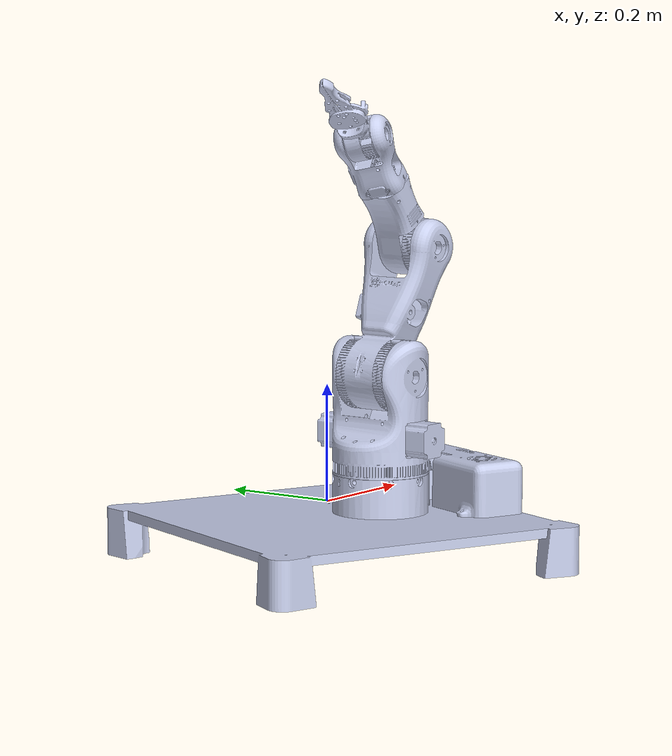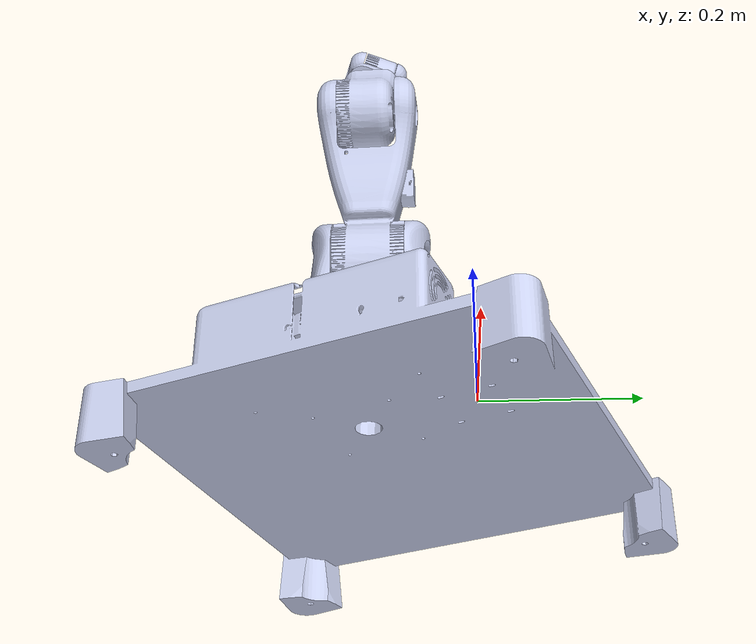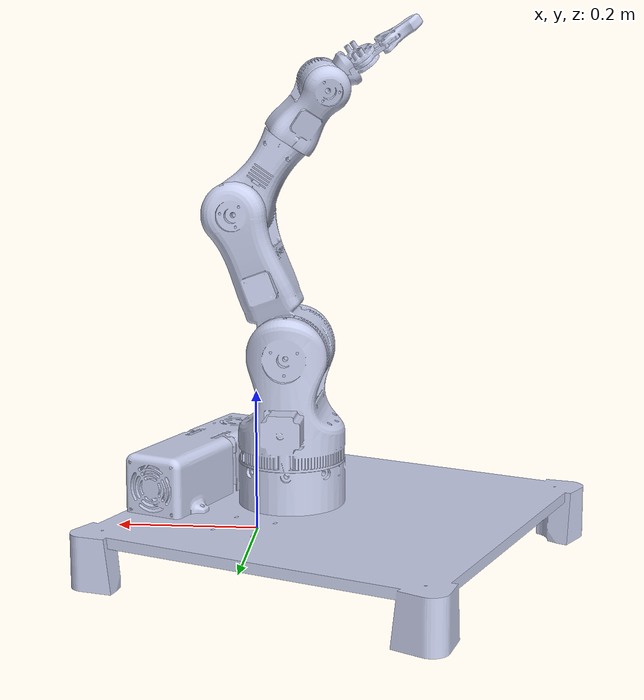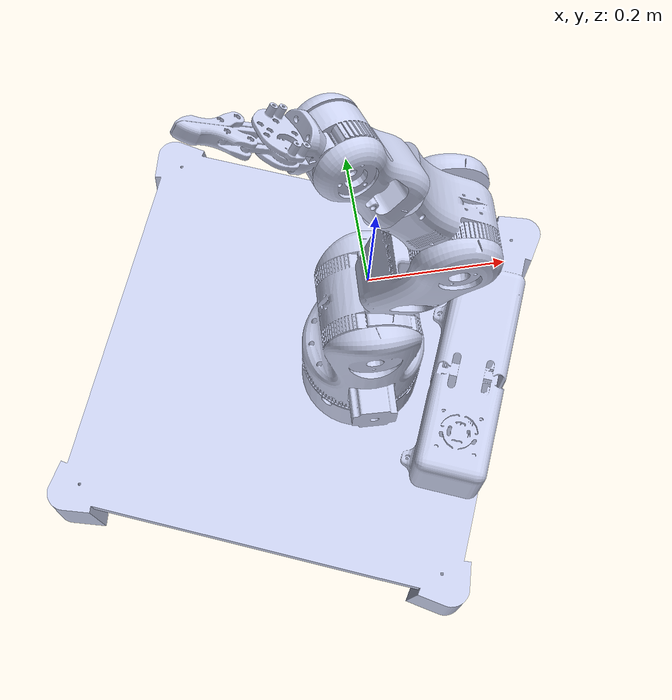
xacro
<?xml version="1.0"?>
<robot xmlns:xacro="http://www.ros.org/wiki/xacro"  name="robot_5a_urdf">

    <link name="world"></link>

    <joint name="base_joint" type="fixed">
      <origine xyz="1.5 1.0 0" rpy="0 0 0"/>
      <parent link="world"/>
      <child link="base_link"/>
    </joint>

    <link name="base_link">
      <inertial>
        <origin xyz="-0.0548860380843249 0.13093941386242 0.123490600745143" rpy="0 0 0"/>
        <mass value="14.597154271183"/>
        <inertia ixx="0.695957973379333" ixy="-0.0649025967272173" ixz="-0.0112244947190923"
                iyy="0.473270434583888" iyz="-0.0216810141749484" izz="0.714879715191763"/>
      </inertial>
      <visual>
        <origin xyz="0 0 0" rpy="0 0 0"/>
        <geometry>
          <mesh filename="file://$(find robot_5a_urdf)/meshes/base_link.STL"/>
        </geometry>
        <material name="">
          <color rgba="0.792156862745098 0.819607843137255 0.933333333333333 1"/>
        </material>
      </visual>
      <collision>
        <origin xyz="0 0 0" rpy="0 0 0"/>
        <geometry>
          <mesh filename="file://$(find robot_5a_urdf)/meshes/base_link.STL"/>
        </geometry>
      </collision>
    </link>

    <link name="Link_1">
      <inertial>
        <origin xyz="-0.021301 0.065037 0.0075714" rpy="0 0 0"/>
        <mass value="14.597"/>
        <inertia ixx="0.69565" ixy="-0.058894" ixz="0.010958" iyy="0.47327" iyz="0.034841" izz="0.71519"/>
      </inertial>
      <visual>
        <origin xyz="0 0 0" rpy="0 0 0"/>
        <geometry>
          <mesh filename="file://$(find robot_5a_urdf)/meshes/Link_1.STL"/>
        </geometry>
        <material name="">
          <color rgba="0.79216 0.81961 0.93333 1"/>
        </material>
      </visual>
      <collision>
        <origin xyz="0 0 0" rpy="0 0 0"/>
        <geometry>
          <mesh filename="file://$(find robot_5a_urdf)/meshes/Link_1.STL"/>
        </geometry>
      </collision>
    </link>

    <joint name="Joint_1" type="revolute">
      <origin xyz="-0.035213 -0.13463 0.065903" rpy="1.5708 0 -0.85661"/>
      <parent link="base_link"/>
      <child link="Link_1"/>
      <axis xyz="0 1 0"/>
      <limit lower="-1.5707" upper="1.5707" effort="5" velocity="1"/>
    </joint>

    <link name="Link_2">
      <inertial>
        <origin xyz="0.0103079949986939 -0.10122359821804 0.0158561314021889" rpy="0 0 0"/>
        <mass value="14.597154271183"/>
        <inertia ixx="0.715780080314829" ixy="0.021388200911921" ixz="0.00320169652070024"
                iyy="0.457122372881164" iyz="0.0219238847969466" izz="0.711205669958993"/>
      </inertial>
      <visual>
        <origin xyz="0 0 0" rpy="0 0 0"/>
        <geometry>
          <mesh filename="file://$(find robot_5a_urdf)/meshes/Link_2.STL"/>
        </geometry>
        <material name="">
          <color rgba="0.792156862745098 0.819607843137255 0.933333333333333 1"/>
        </material>
      </visual>
      <collision>
        <origin xyz="0 0 0" rpy="0 0 0"/>
        <geometry>
          <mesh filename="file://$(find robot_5a_urdf)/meshes/Link_2.STL"/>
        </geometry>
      </collision>
    </link>

    <joint name="Joint_2" type="revolute">
      <origin xyz="0 0.1655 0" rpy="-2.7886 0.7558 3.1416"/>
      <parent link="Link_1"/>
      <child link="Link_2"/>
      <axis xyz="1 0 0"/>
      <limit lower="-1.5707" upper="1.5707" effort="5" velocity="1"/>
    </joint>

    <link name="Link_3">
      <inertial>
        <origin xyz="0.20022943071033 -0.0103079949986938 0.253115452864687" rpy="0 0 0"/>
        <mass value="14.597154271183"/>
        <inertia ixx="0.604661953325442" ixy="0.00982373505240051" ixz="-0.127279503360431"
                iyy="0.715780080314829" iyz="0.0192665572555039" izz="0.563666089514714"/>
      </inertial>
      <visual>
        <origin xyz="0 0 0" rpy="0 0 0"/>
        <geometry>
          <mesh filename="file://$(find robot_5a_urdf)/meshes/Link_3.STL"/>
        </geometry>
        <material name="">
          <color rgba="0.792156862745098 0.819607843137255 0.933333333333333 1"/>
        </material>
      </visual>
      <collision>
        <origin xyz="0 0 0" rpy="0 0 0"/>
        <geometry>
          <mesh filename="file://$(find robot_5a_urdf)/meshes/Link_3.STL"/>
        </geometry>
      </collision>
    </link>

    <joint name="Joint_3" type="revolute">
      <origin xyz="0 0.22112 0" rpy="-3.1416 -0.95068 -1.5708"/>
      <parent link="Link_2"/>
      <child link="Link_3"/>
      <axis xyz="0 1 0"/>
      <limit lower="-1.5707" upper="1.5707" effort="5" velocity="1"/>
    </joint>

    <link name="Link_4">
      <inertial>
        <origin xyz="0.229768913416455 -0.369352839223879 0.106888566945361" rpy="0 0 0"/>
        <mass value="14.597154271183"/>
        <inertia ixx="0.59877838195797" ixy="0.114168459956055" ixz="-0.0669283055033016"
                iyy="0.604661953325442" iyz="0.057115151206315" izz="0.680667787871573"/>
      </inertial>
      <visual>
        <origin xyz="0 0 0" rpy="0 0 0"/>
        <geometry>
          <mesh filename="file://$(find robot_5a_urdf)/meshes/Link_4.STL"/>
        </geometry>
        <material name="">
          <color rgba="0.792156862745098 0.819607843137255 0.933333333333333 1"/>
        </material>
      </visual>
      <collision>
        <origin xyz="0 0 0" rpy="0 0 0"/>
        <geometry>
          <mesh filename="file://$(find robot_5a_urdf)/meshes/Link_4.STL"/>
        </geometry>
      </collision>
    </link>

    <joint name="Joint_4" type="revolute">
      <origin xyz="-0.16912 0.002 0" rpy="0 -1.184 1.5708"/>
      <parent link="Link_3"/>
      <child link="Link_4"/>
      <axis xyz="0 1 0"/>
      <limit lower="-1.5707" upper="1.5707" effort="5" velocity="1"/>
    </joint>

    <link name="Link_5">
      <inertial>
        <origin xyz="0.3705564409974 0.106888566945361 0.30222256926485" rpy="0 0 0"/>
        <mass value="14.597154271183"/>
        <inertia ixx="0.520070664432361" ixy="-0.0834897515196175" ixz="-0.0798526767078822"
                iyy="0.680667787871572" iyz="-0.027766886142599" izz="0.683369670851052"/>
      </inertial>
      <visual>
        <origin xyz="0 0 0" rpy="0 0 0"/>
        <geometry>
          <mesh filename="file://$(find robot_5a_urdf)/meshes/Link_5.STL"/>
        </geometry>
        <material name="">
          <color rgba="0.792156862745098 0.819607843137255 0.933333333333333 1"/>
        </material>
      </visual>
      <collision>
        <origin xyz="0 0 0" rpy="0 0 0"/>
        <geometry>
          <mesh filename="file://$(find robot_5a_urdf)/meshes/Link_5.STL"/>
        </geometry>
      </collision>
    </link>

    <joint name="Joint_5" type="revolute">
      <origin xyz="0 0.05 0" rpy="1.5708 0 -0.38538"/>
      <parent link="Link_4"/>
      <child link="Link_5"/>
      <axis xyz="0 1 0"/>
      <limit lower="-1.5707" upper="1.5707" effort="5" velocity="1"/>
    </joint>

    <!-- Set the gazebo robot controler & plugins-->

    <ros2_control name="GazeboSimSystem" type="system">

      <hardware>
        <plugin>gazebo_ros2_control/GazeboSystem</plugin>
      </hardware>

      <joint name="joint_1">
        <command_interface name="position"/>
        <state_interface name="position">
          <param name="initial_value">0.0 </param>
        </state_interface>
        <state_interface name="velocity"/>
      </joint>

      <joint name="joint_2">
        <command_interface name="position"/>
        <state_interface name="position">
          <param name="initial_value">0.0 </param>
        </state_interface>
        <state_interface name="velocity"/>
      </joint>

      <joint name="joint_3">
        <command_interface name="position"/>
        <state_interface name="position">
          <param name="initial_value">0.0 </param>
        </state_interface>
        <state_interface name="velocity"/>
      </joint>

      <joint name="joint_4">
        <command_interface name="position"/>
        <state_interface name="position">
          <param name="initial_value">0.0 </param>
        </state_interface>
        <state_interface name="velocity"/>
      </joint>

      <joint name="joint_5">
        <command_interface name="position"/>
        <state_interface name="position">
          <param name="initial_value">0.0 </param>
        </state_interface>
        <state_interface name="velocity"/>
      </joint>

      <joint name="joint1">
        <command_interface name="position"/>
        <state_interface name="position">
          <param name="initial_value">0.0 </param>
        </state_interface>
        <state_interface name="velocity"/>
      </joint>

      <joint name="joint2">
        <param name="mimic"> joint1 </param>
        <param name="multipler"> 1 </param>
        <command_interface name="position"/>
        <state_interface name="position">
          <param name="initial_value">0.0 </param>
        </state_interface>
        <state_interface name="velocity"/>
      </joint>
    </ros2_control>

    <gazebo>
      <plugin name="gazebo_ros2_control" filename="libgazebo_ros2_control.so">
        <update_rate>50</update_rate>
        <robot_param>robot_description</robot_param>
        <robot_param_node>robot_state_publisher</robot_param_node>
        <parameters>$(find robot_5a_urdf)/config/robot_5a_controllers.yaml</parameters>
        <controller_manager_name>simulation_controller_manager</controller_manager_name>
      </plugin>
    </gazebo>

    <!-- Instead, we need to add gazebo tags for our links that refer to Gazebo materials -->

    <!-- Adding a color for each link view on gazebo everonement-->
    <gazebo reference="base_link">
        <material>Gazebo/Green</material>
    </gazebo>

    <gazebo reference="Link_1">
        <material>Gazebo/Blue</material>
    </gazebo>

    <gazebo reference="Link_2">
        <material>Gazebo/Yelow</material>
    </gazebo>

    <gazebo reference="Link_3">
        <material>Gazebo/Green</material>
    </gazebo>

    <gazebo reference="Link_4">
        <material>Gazebo/Red</material>
    </gazebo>

    <gazebo reference="Link_5">
        <material>Gazebo/Orange</material>
    </gazebo>

    <!-- Fictions -->
    <gazebo reference="front_caster">
        <mu1>0.01</mu1>
        <mu2>0.01</mu2>
        <material>Gazebo/White</material>
        <gravity>true</gravity>
    </gazebo>

    <!-- Gazebo requires the use of plugins to interact with other systems such as ROS. -->

    <!-- This plugin will publish the joint_states for the selected joints
            (which robot_state_publisher can then use to broadcast the approprate tf). -->

    <!-- Gazebo requires the use of plugins to interact with other systems such as ROS. -->

    <!-- This plugin will publish the joint_states for the selected joints
            (which robot_state_publisher can then use to broadcast the approprate tf). -->

    <!-- This plugin will read a JointTrajectory message from the /set_joint_trajectory topic
            and move the machine accordingly. It's a bit clunky but it works. -->

</robot>
